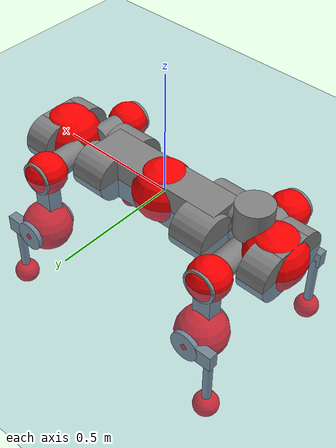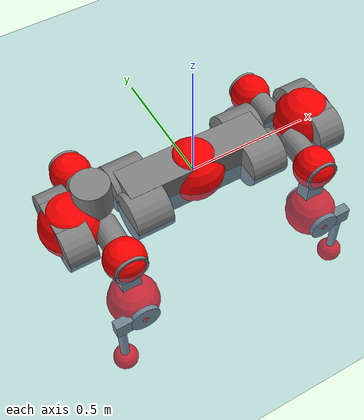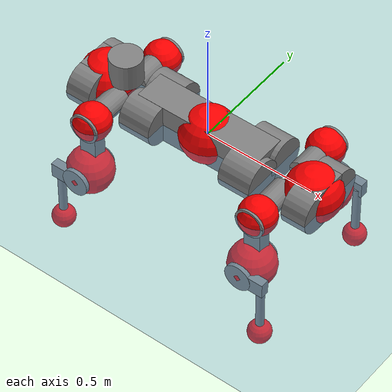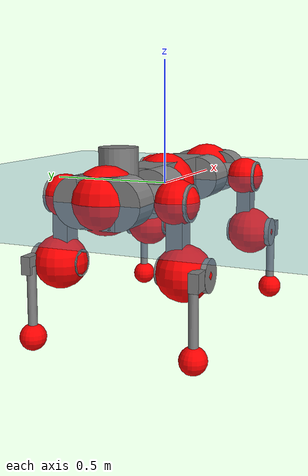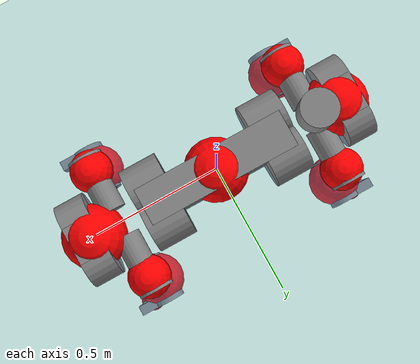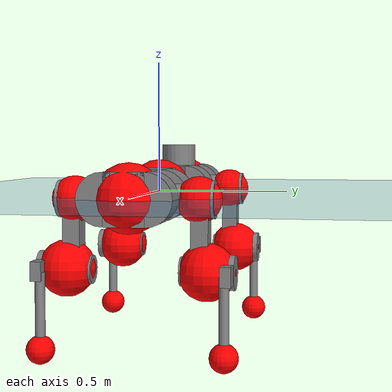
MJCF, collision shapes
<mujoco model="anymal_c">
  <compiler angle="radian" assetdir="assets" balanceinertia="true" inertiafromgeom="false"/>

  <option timestep="0.005" density="1.2" viscosity="2e-05"/>

  <size nkey="1"/>

  <visual>
    <quality shadowsize="8192"/>
    <map shadowclip="0.5"/>
  </visual>

  <default>
    <default class="/">
      <material specular="0" shininess="0.25"/>
      <geom contype="0" conaffinity="0" group="1" solref="-1000 -80"/>
      <site size="0.01 0.005 0.005" group="5"/>
      <general forcelimited="true" forcerange="-80 80" biastype="affine" gainprm="80" biasprm="0 -80 -2"/>
      <default class="anymal_c">
        <joint armature="0.01" damping="0.01" frictionloss="0.1"/>
        <default class="visual">
          <geom type="mesh" group="2"/>
          <default class="visual_zflip"/>
        </default>
        <default class="collision">
          <geom type="cylinder" group="3"/>
          <default class="foot">
            <geom size="0.03 0 0" type="sphere" condim="6" priority="1" friction="0.8 0.02 0.01" solimp="0.015 1 0.03"/>
          </default>
        </default>
      </default>
      <default class="reward_collision_sphere">
        <geom group="5" rgba="1 0 0 1"/>
      </default>
    </default>
  </default>

  <asset>
    <texture type="skybox" colorspace="auto" name="//unnamed_texture_0" builtin="gradient" rgb1="0.95 0.95 0.95" rgb2="0.95 0.95 0.95" width="100" height="600"/>
    <texture type="2d" colorspace="auto" name="texplane" builtin="checker" rgb1="0.345 0.575 0.748" rgb2="0.345 0.575 0.748" markrgb="1 1 1" width="512" height="512"/>
    <texture type="2d" colorspace="linear" name="base" file="base.png"/>
    <texture type="2d" colorspace="linear" name="top_shell" file="top_shell.png"/>
    <texture type="2d" colorspace="linear" name="bottom_shell" file="bottom_shell.png"/>
    <texture type="2d" colorspace="linear" name="remote" file="remote.png"/>
    <texture type="2d" colorspace="linear" name="hatch" file="hatch.png"/>
    <texture type="2d" colorspace="linear" name="handle" file="handle.png"/>
    <texture type="2d" colorspace="linear" name="face" file="face.png"/>
    <texture type="2d" colorspace="linear" name="battery" file="battery.png"/>
    <texture type="2d" colorspace="linear" name="lidar_cage" file="lidar_cage.png"/>
    <texture type="2d" colorspace="linear" name="depth_camera" file="depth_camera.png"/>
    <texture type="2d" colorspace="linear" name="wide_angle_camera" file="wide_angle_camera.png"/>
    <texture type="2d" colorspace="linear" name="lidar" file="lidar.png"/>
    <texture type="2d" colorspace="linear" name="drive" file="drive.png"/>
    <texture type="2d" colorspace="linear" name="hip_l" file="hip_l.png"/>
    <texture type="2d" colorspace="linear" name="shank_l" file="shank_l.png"/>
    <texture type="2d" colorspace="linear" name="foot" file="foot.png"/>
    <texture type="2d" colorspace="linear" name="thigh" file="thigh.png"/>
    <texture type="2d" colorspace="linear" name="shank_r" file="shank_r.png"/>
    <texture type="2d" colorspace="linear" name="hip_r" file="hip_r.png"/>
    <material name="MatPlane" class="/" texture="texplane" texuniform="true" texrepeat="2 2" specular="0.9" shininess="0.5"/>
    <material name="black_plastic" class="/" rgba="0.007 0.007 0.007 1"/>
    <material name="green" class="/" rgba="0.052 0.178 0.033 1"/>
    <material name="red" class="/" rgba="0.178 0.006 0.005 1"/>
    <material name="yellow" class="/" rgba="0.178 0.119 0.006 1"/>
    <material name="lwl" class="/" rgba="0.8 0.8 0.8 1"/>
    <material name="base" class="/" texture="base"/>
    <material name="top_shell" class="/" texture="top_shell"/>
    <material name="bottom_shell" class="/" texture="bottom_shell"/>
    <material name="hip_l" class="/" texture="hip_l"/>
    <material name="thigh" class="/" texture="thigh"/>
    <material name="shank_l" class="/" texture="shank_l"/>
    <material name="foot" class="/" texture="foot"/>
    <material name="hip_r" class="/" texture="hip_r"/>
    <material name="shank" class="/" texture="shank_r"/>
    <material name="hatch" class="/" texture="hatch"/>
    <material name="remote" class="/" texture="remote"/>
    <material name="handle" class="/" texture="handle"/>
    <material name="face" class="/" texture="face"/>
    <material name="depth_camera" class="/" texture="depth_camera"/>
    <material name="wide_angle_camera" class="/" texture="wide_angle_camera"/>
    <material name="battery" class="/" texture="battery"/>
    <material name="lidar_cage" class="/" texture="lidar_cage"/>
    <material name="lidar" class="/" texture="lidar"/>
    <material name="drive" class="/" texture="drive"/>
    <mesh name="base_0" class="/" file="base_0.obj"/>
    <mesh name="base_1" class="/" file="base_1.obj"/>
    <mesh name="base_2" class="/" file="base_2.obj"/>
    <mesh name="base_3" class="/" file="base_3.obj"/>
    <mesh name="base_4" class="/" file="base_4.obj"/>
    <mesh name="base_5" class="/" file="base_5.obj"/>
    <mesh name="top_shell" class="/" file="top_shell.obj"/>
    <mesh name="bottom_shell" class="/" file="bottom_shell.obj"/>
    <mesh name="remote" class="/" file="remote.obj"/>
    <mesh name="handle" class="/" file="handle.obj"/>
    <mesh name="face" class="/" file="face.obj"/>
    <mesh name="wide_angle_camera" class="/" file="wide_angle_camera.obj"/>
    <mesh name="depth_camera" class="/" file="depth_camera.obj"/>
    <mesh name="battery" class="/" file="battery.obj"/>
    <mesh name="lidar_cage" class="/" file="lidar_cage.obj"/>
    <mesh name="lidar" class="/" file="lidar.obj"/>
    <mesh name="drive" class="/" file="drive.obj"/>
    <mesh name="hip_l" class="/" file="hip_l.obj"/>
    <mesh name="thigh" class="/" file="thigh.obj"/>
    <mesh name="shank_l" class="/" file="shank_l.obj"/>
    <mesh name="foot" class="/" file="foot.obj"/>
    <mesh name="hip_r" class="/" file="hip_r.obj"/>
    <mesh name="hatch" class="/" file="hatch.obj"/>
    <mesh name="shank_r" class="/" file="shank_r.obj"/>
  </asset>

  <worldbody>
    <geom name="floor" class="/" size="100 100 0.125" type="plane" group="0" material="MatPlane"/>
    <light name="toplight_shadow" class="/" pos="0 0 5" dir="0.0990148 0.0990148 -0.990148" type="directional" ambient="0.04 0.04 0.04" diffuse="0.55 0.55 0.55" specular="0.12 0.12 0.12"/>
    <light name="toplight_fill" class="/" pos="0 0 5" dir="0.0990148 0.0990148 -0.990148" type="directional" castshadow="false" ambient="0.04 0.04 0.04" diffuse="0.3 0.3 0.3" specular="0.08 0.08 0.08"/>
    <body name="trunk" childclass="anymal_c" pos="0.00197105 0.00195814 0.00101384" quat="1 0.000231007 -1.26168e-05 3.44232e-05">
      <inertial pos="0.00275869 0.00087974 0.0422912" quat="0.493753 0.495414 0.51086 0.499795" mass="20.8318" diaginertia="1.25443 0.873735 0.113641"/>
      <joint name="//unnamed_joint_0" type="free" armature="0" damping="0" frictionloss="0"/>
      <geom name="//unnamed_geom_1" class="visual" material="green" mesh="base_0"/>
      <geom name="//unnamed_geom_2" class="visual" material="yellow" mesh="base_1"/>
      <geom name="//unnamed_geom_3" class="visual" material="red" mesh="base_2"/>
      <geom name="//unnamed_geom_4" class="visual" material="black_plastic" mesh="base_3"/>
      <geom name="//unnamed_geom_5" class="visual" material="lwl" mesh="base_4"/>
      <geom name="//unnamed_geom_6" class="visual" material="base" mesh="base_5"/>
      <geom name="trunk_1" class="collision" size="0.296629 0.0716 0.0920572" type="box"/>
      <geom name="trunk_2" class="collision" size="0.0920572 0.0741572" pos="0.246218 0.0740072 0" quat="0.707107 0 0.707107 0"/>
      <geom name="trunk_3" class="collision" size="0.0920572 0.0741572" pos="-0.246218 0.0740072 0" quat="0.707107 0 0.707107 0"/>
      <geom name="trunk_4" class="collision" size="0.0920572 0.0741572" pos="0.246218 -0.0740072 0" quat="0.707107 0 0.707107 0"/>
      <geom name="trunk_5" class="collision" size="0.0920572 0.0741572" pos="-0.246218 -0.0740072 0" quat="0.707107 0 0.707107 0"/>
      <geom name="//unnamed_geom_12" class="visual" material="top_shell" mesh="top_shell"/>
      <geom name="//unnamed_geom_13" class="visual" material="bottom_shell" mesh="bottom_shell"/>
      <geom name="//unnamed_geom_14" class="visual" material="remote" mesh="remote"/>
      <geom name="//unnamed_geom_15" class="visual" material="handle" mesh="handle"/>
      <geom name="//unnamed_geom_16" class="visual" pos="0.46923 0 0" quat="1 0 0 0" material="face" mesh="face"/>
      <geom name="trunk_6" class="collision" size="0.0562572 0.0716 0.0920572" pos="0.531492 0 0" type="box"/>
      <geom name="//unnamed_geom_18" class="collision" size="0.0920572 0.0562572" pos="0.531492 0.0740072 0" quat="0.707107 0 0.707107 0"/>
      <geom name="//unnamed_geom_19" class="collision" size="0.0920572 0.0562572" pos="0.531492 -0.0740072 0" quat="0.707107 0 0.707107 0"/>
      <geom name="//unnamed_geom_20" class="visual" pos="0.522595 0 -0.0237544" quat="0.965926 0 0.258819 0" material="depth_camera" mesh="depth_camera"/>
      <geom name="//unnamed_geom_21" class="visual" pos="0.580736 0 0.013163" material="wide_angle_camera" mesh="wide_angle_camera"/>
      <geom name="//unnamed_geom_22" class="visual_zflip" pos="-0.46923 0 0" quat="0 0 0 1" material="face" mesh="face"/>
      <geom name="trunk_7" class="collision" size="0.0562572 0.0716 0.0920572" pos="-0.531492 0 0" quat="0 0 0 1" type="box"/>
      <geom name="//unnamed_geom_24" class="collision" size="0.0920572 0.0562572" pos="-0.531492 -0.0740072 0" quat="0 -0.707107 0 0.707107"/>
      <geom name="//unnamed_geom_25" class="collision" size="0.0920572 0.0562572" pos="-0.531492 0.0740072 0" quat="0 -0.707107 0 0.707107"/>
      <geom name="//unnamed_geom_26" class="visual" pos="-0.522595 0 -0.0237544" quat="0 -0.258819 0 0.965926" material="depth_camera" mesh="depth_camera"/>
      <geom name="//unnamed_geom_27" class="visual_zflip" pos="-0.580736 0 0.013163" quat="0 0 0 1" material="wide_angle_camera" mesh="wide_angle_camera"/>
      <geom name="//unnamed_geom_28" class="visual" material="battery" mesh="battery"/>
      <geom name="//unnamed_geom_29" class="visual" pos="0 0.079845 0.0274643" quat="0.683013 -0.183013 0.183013 0.683013" material="depth_camera" mesh="depth_camera"/>
      <geom name="//unnamed_geom_30" class="visual" pos="0 -0.079845 0.0274643" quat="0.683013 0.183013 0.183013 -0.683013" material="depth_camera" mesh="depth_camera"/>
      <geom name="//unnamed_geom_31" class="visual" pos="-0.412062 0 0.0646278" quat="1 0 0 0" material="lidar_cage" mesh="lidar_cage"/>
      <geom name="trunk_8" class="collision" size="0.0716 0.0613715" pos="-0.412062 0 0.117385"/>
      <geom name="//unnamed_geom_33" class="visual" pos="-0.412062 -2.93843e-05 0.125035" quat="0.707107 0 0 -0.707107" material="lidar" mesh="lidar"/>
      <geom name="//unnamed_geom_34" class="visual" pos="0.339498 0.10989 3.06974e-09" quat="0.258819 0.965926 0 0" material="drive" mesh="drive"/>
      <geom name="//unnamed_geom_35" class="visual" pos="0.339498 -0.10989 -3.06974e-09" quat="0.258819 -0.965926 0 0" material="drive" mesh="drive"/>
      <geom name="//unnamed_geom_36" class="visual" pos="-0.339498 0.10989 -3.06974e-09" quat="0 0 0.965926 -0.258819" material="drive" mesh="drive"/>
      <geom name="//unnamed_geom_37" class="visual" pos="-0.339498 -0.10989 3.06974e-09" quat="0 0 -0.965926 -0.258819" material="drive" mesh="drive"/>
      <geom name="//unnamed_geom_38" class="visual" pos="0.131316 0 0.0641882" quat="1 0 0 0" material="hatch" mesh="hatch"/>
      <geom name="//unnamed_geom_39" class="reward_collision_sphere" size="0.122743"/>
      <geom name="//unnamed_geom_40" class="reward_collision_sphere" size="0.122743" pos="0.509417 0 0"/>
      <geom name="//unnamed_geom_41" class="reward_collision_sphere" size="0.122743" pos="-0.509417 0 0"/>
      <site name="imu" pos="0.285875 0.0126023 0.0346483" size="0.0102286"/>
      <camera name="track" pos="0 -2.11449 0" quat="0.707107 0.707107 0 0" mode="trackcom"/>
      <camera name="ego_camera" pos="0.509417 0 -0.0351716" quat="-0.5 -0.5 0.5 0.5"/>
      <body name="LF_HIP" pos="0.338931 0.109517 -0.00333318" quat="0.258948 0.965891 3.16365e-05 -0.00108233">
        <inertial pos="0.0626443 -0.0178508 -0.00764315" quat="-0.129607 0.710034 -0.133274 0.679185" mass="2.9921" diaginertia="0.0109651 0.00632034 0.00176203"/>
        <joint name="LF_HAA" pos="0 0 0" axis="0.999997 0.000874439 0.00219236" range="-0.698566 0.485334" armature="0.00965637" damping="0.00996477" frictionloss="0.115173"/>
        <geom name="//unnamed_geom_42" class="visual" pos="0 0.000180579 -2.96599e-05" quat="0.258819 -0.965926 0 0" material="hip_l" mesh="hip_l"/>
        <geom name="//unnamed_geom_43" class="visual" pos="0.0678091 -0.0811172 -0.0455168" quat="0.183013 -0.683013 0.683013 0.183013" material="drive" mesh="drive"/>
        <geom name="//unnamed_geom_44" class="collision" size="0.0511429 0.0716" pos="0.0678091 -0.0126444 -0.0060715" quat="-0.353553 -0.612372 0.612372 -0.353553"/>
        <body name="LF_THIGH" pos="0.0652511 -0.0777412 -0.0390389" quat="0.182567 -0.682943 0.682934 0.184009">
          <inertial pos="0.0357121 0.000288776 -0.216873" quat="0.993706 -0.00811326 -0.0845508 0.073034" mass="3.1891" diaginertia="0.0548878 0.0387529 0.00216532"/>
          <joint name="LF_HFE" pos="0 0 0" axis="0.999887 -6.81694e-05 0.0150071" range="-3.10477 3.13785" armature="0.0115657" damping="0" frictionloss="0.0881455"/>
          <geom name="//unnamed_geom_45" class="visual" pos="0.00148809 2.34489e-06 0" quat="0.707107 0 0 -0.707107" material="thigh" mesh="thigh"/>
          <geom name="//unnamed_geom_46" class="collision" size="0.0664858 0.0409143" pos="0.0452815 0 0" quat="0.5 0.5 -0.5 -0.5"/>
          <geom name="//unnamed_geom_47" class="collision" size="0.0383572 0.0306857 0.144544" pos="0.0339612 0 -0.124256" quat="0.707107 0 0 -0.707107" type="box"/>
          <geom name="//unnamed_geom_48" class="visual" pos="0.113543 0 -0.250598" quat="1 0 0 0" material="drive" mesh="drive"/>
          <geom name="//unnamed_geom_49" class="collision" size="0.0511429 0.0716" pos="0.0343008 0 -0.250598" quat="0.707107 0 0.707107 0"/>
          <geom name="//unnamed_geom_50" class="reward_collision_sphere" size="0.0818286" pos="0.028301 0 0"/>
          <body name="LF_SHANK" pos="0.112884 -0.000944881 -0.251319" quat="0.999999 0.000602899 -0.000485477 -0.00106112">
            <inertial pos="0.00869045 -0.0650026 -0.0710968" quat="0.993662 -0.108976 0.00159649 -0.0275215" mass="0.674809" diaginertia="0.0189079 0.0127132 0.000591347"/>
            <joint name="LF_KFE" pos="0 0 0" axis="0.999974 -0.00315277 0.00641121" range="-3.13155 3.14922" armature="0.0106035" damping="0" frictionloss="0.097038"/>
            <geom name="//unnamed_geom_51" class="visual" pos="0.000485235 0.0025873 0" quat="0.707107 0 0 -0.707107" material="shank_l" mesh="shank_l"/>
            <geom name="LF_kfe_act" class="collision" size="0.0613715 0.0204572" pos="0.0226408 0 0" quat="0.5 0.5 -0.5 -0.5"/>
            <geom name="//unnamed_geom_53" class="collision" size="0.0588133 0.0345215 0.0194343" pos="0.0226408 -0.0607905 0" quat="0.5 0.5 -0.5 -0.5" type="box"/>
            <geom name="//unnamed_geom_54" class="visual" pos="0.014773 -0.0921509 -0.297174" quat="0.382683 0 0 -0.92388" material="foot" mesh="foot"/>
            <geom name="LF_calf" class="collision" size="0.0179 0.144481" pos="0.0147731 -0.0929847 -0.148587" quat="0.707107 0 0 -0.707107"/>
            <geom name="LF_foot" class="foot" size="0.0338817" pos="0.0147731 -0.0929847 -0.27739" quat="0.707107 0 0 -0.707107"/>
            <geom name="//unnamed_geom_57" class="reward_collision_sphere" size="0.102286" pos="-0.0566019 0 0"/>
            <geom name="//unnamed_geom_58" class="reward_collision_sphere" size="0.0511429" pos="0.0147731 -0.0929847 -0.27739"/>
            <site name="LF_foot" class="foot" pos="0.0147731 -0.0929847 -0.27739" quat="0.707107 0 0 -0.707107" size="0.0102286"/>
          </body>
        </body>
      </body>
      <body name="RF_HIP" pos="0.338748 -0.109501 -0.00161183" quat="0.258802 -0.96593 -7.12067e-05 -0.00039922">
        <inertial pos="0.0653092 0.0178361 -0.00901405" quat="0.121286 0.679386 0.128665 0.712159" mass="2.99985" diaginertia="0.0112059 0.00637546 0.00175693"/>
        <joint name="RF_HAA" pos="0 0 0" axis="0.999934 -0.0101951 0.00523005" range="-0.524182 0.704945" armature="0.0103147" damping="0.00471764" frictionloss="0.0902772"/>
        <geom name="//unnamed_geom_59" class="visual" pos="0 -0.000180578 -2.96599e-05" quat="0.258819 0.965926 0 0" material="hip_r" mesh="hip_r"/>
        <geom name="//unnamed_geom_60" class="visual" pos="0.0678091 0.0811172 -0.0455168" quat="0.183013 0.683013 0.683013 -0.183013" material="drive" mesh="drive"/>
        <geom name="//unnamed_geom_61" class="collision" size="0.0511429 0.0716" pos="0.0678091 0.0126444 -0.0060715" quat="-0.353553 0.612372 0.612372 0.353553"/>
        <body name="RF_THIGH" pos="0.0683175 0.074754 -0.0350088" quat="0.183467 0.682749 0.683267 -0.182591">
          <inertial pos="0.0323664 0.000295795 -0.214964" quat="0.992688 -0.00549369 -0.0813901 0.0889758" mass="3.34857" diaginertia="0.056923 0.0399371 0.002233"/>
          <joint name="RF_HFE" pos="0 0 0" axis="0.999924 0.0114159 -0.00469524" stiffness="0.0126505" range="-3.12469 3.19138" armature="0.00970841" damping="0" frictionloss="0.101488"/>
          <geom name="//unnamed_geom_62" class="visual" pos="0.00148809 2.34489e-06 0" quat="0.707107 0 0 -0.707107" material="thigh" mesh="thigh"/>
          <geom name="//unnamed_geom_63" class="collision" size="0.0664858 0.0409143" pos="0.0452815 0 0" quat="0.5 0.5 0.5 0.5"/>
          <geom name="//unnamed_geom_64" class="collision" size="0.0383572 0.0306857 0.144544" pos="0.0339612 0 -0.124256" quat="0.707107 0 0 0.707107" type="box"/>
          <geom name="//unnamed_geom_65" class="visual" pos="0.113543 0 -0.250598" quat="1 0 0 0" material="drive" mesh="drive"/>
          <geom name="//unnamed_geom_66" class="collision" size="0.0511429 0.0716" pos="0.0343008 0 -0.250598" quat="0.707107 0 0.707107 0"/>
          <geom name="//unnamed_geom_67" class="reward_collision_sphere" size="0.0818286" pos="0.028301 0 0"/>
          <body name="RF_SHANK" pos="0.11466 0.00123248 -0.247651" quat="1 0.000427514 0.000226368 -8.37892e-05">
            <inertial pos="0.0064813 0.0619428 -0.0684579" quat="0.992911 0.116175 -0.00243165 0.0249987" mass="0.615963" diaginertia="0.0196607 0.0126357 0.000600065"/>
            <joint name="RF_KFE" pos="0 0 0" axis="0.999913 0.012302 -0.00481606" stiffness="0.00570933" range="-3.16884 3.1568" armature="0.00985504" damping="0.0166435" frictionloss="0.112877"/>
            <geom name="//unnamed_geom_68" class="visual" pos="0.000485232 -0.00258729 0" quat="0.707107 0 0 0.707107" material="shank" mesh="shank_r"/>
            <geom name="RF_kfe_act" class="collision" size="0.0613715 0.0204572" pos="0.0226408 0 0" quat="0.5 0.5 0.5 0.5"/>
            <geom name="//unnamed_geom_70" class="collision" size="0.0588133 0.0345215 0.0194343" pos="0.0226408 0.0607905 0" quat="0.5 0.5 0.5 0.5" type="box"/>
            <geom name="//unnamed_geom_71" class="visual" pos="0.0147732 0.0921509 -0.297174" quat="0.382683 0 0 0.92388" material="foot" mesh="foot"/>
            <geom name="RF_calf" class="collision" size="0.0179 0.144481" pos="0.0147731 0.0929847 -0.148587" quat="0.707107 0 0 0.707107"/>
            <geom name="RF_foot" class="foot" size="0.0295858" pos="0.0147731 0.0929847 -0.27739" quat="0.707107 0 0 0.707107"/>
            <geom name="//unnamed_geom_74" class="reward_collision_sphere" size="0.102286" pos="-0.0566019 0 0"/>
            <geom name="//unnamed_geom_75" class="reward_collision_sphere" size="0.0511429" pos="0.0147731 0.0929847 -0.27739"/>
            <site name="RF_foot" class="foot" pos="0.0147731 0.0929847 -0.27739" quat="0.707107 0 0 0.707107" size="0.0102286"/>
          </body>
        </body>
      </body>
      <body name="LH_HIP" pos="-0.339112 0.107938 -0.00115759" quat="4.98403e-05 0.000110491 0.966004 -0.258526">
        <inertial pos="0.0656767 0.0156341 -0.00686756" quat="0.140869 0.68505 0.128293 0.703138" mass="2.86308" diaginertia="0.0107182 0.00644391 0.00167014"/>
        <joint name="LH_HAA" pos="0 0 0" axis="0.999903 0.0106414 0.00895493" range="-0.43754 0.763589" armature="0.0100925" damping="0.0103372" frictionloss="0.0942734"/>
        <geom name="//unnamed_geom_76" class="visual" pos="0 -0.000180578 -2.96599e-05" quat="-0.258819 -0.965926 0 0" material="hip_r" mesh="hip_r"/>
        <geom name="//unnamed_geom_77" class="visual" pos="0.0678091 0.0811172 -0.0455168" quat="0.183013 0.683013 0.683013 -0.183013" material="drive" mesh="drive"/>
        <geom name="//unnamed_geom_78" class="collision" size="0.0511429 0.0716" pos="0.0678091 0.0126444 -0.0060715" quat="-0.353553 0.612372 0.612372 0.353553"/>
        <body name="LH_THIGH" pos="0.069687 0.0791874 -0.0354299" quat="0.183042 0.683432 0.682889 -0.181877">
          <inertial pos="0.0350532 0.00118426 -0.216881" quat="0.99242 -0.00401237 -0.0917071 0.0817071" mass="3.40241" diaginertia="0.0561129 0.0403568 0.00225504"/>
          <joint name="LH_HFE" pos="0 0 0" axis="0.999948 0.00714175 0.00724612" range="-3.08589 3.19601" armature="0.0110046" damping="0.0166224" frictionloss="0.114153"/>
          <geom name="//unnamed_geom_79" class="visual" pos="0.00148809 2.34489e-06 0" quat="0.707107 0 0 -0.707107" material="thigh" mesh="thigh"/>
          <geom name="//unnamed_geom_80" class="collision" size="0.0664858 0.0409143" pos="0.0452815 0 0" quat="0.5 0.5 -0.5 -0.5"/>
          <geom name="//unnamed_geom_81" class="collision" size="0.0383572 0.0306857 0.144544" pos="0.0339612 0 -0.124256" quat="0.707107 0 0 -0.707107" type="box"/>
          <geom name="//unnamed_geom_82" class="visual" pos="0.113543 0 -0.250598" quat="1 0 0 0" material="drive" mesh="drive"/>
          <geom name="//unnamed_geom_83" class="collision" size="0.0511429 0.0716" pos="0.0343008 0 -0.250598" quat="0.707107 0 0.707107 0"/>
          <geom name="//unnamed_geom_84" class="reward_collision_sphere" size="0.0818286" pos="0.028301 0 0"/>
          <body name="LH_SHANK" pos="0.110825 0.00202553 -0.251686" quat="1 0.000336503 -0.000142073 -0.000208838">
            <inertial pos="0.00519219 0.0648028 -0.070688" quat="0.993662 0.109122 -0.0126639 0.0238422" mass="0.619556" diaginertia="0.0190846 0.011917 0.00058961"/>
            <joint name="LH_KFE" pos="0 0 0" axis="0.999978 -0.00568889 -0.00354303" range="-3.14103 3.08336" armature="0.0104579" damping="0.0104635" frictionloss="0.0890534"/>
            <geom name="//unnamed_geom_85" class="visual" pos="0.000485232 -0.00258729 0" quat="-0.707107 0 0 -0.707107" material="shank" mesh="shank_r"/>
            <geom name="LH_kfe_act" class="collision" size="0.0613715 0.0204572" pos="0.0226408 0 0" quat="0.5 0.5 -0.5 -0.5"/>
            <geom name="//unnamed_geom_87" class="collision" size="0.0588133 0.0345215 0.0194343" pos="0.0226408 0.0607905 0" quat="0.5 0.5 -0.5 -0.5" type="box"/>
            <geom name="//unnamed_geom_88" class="visual" pos="0.0147732 0.0921509 -0.297174" quat="-0.382683 0 0 -0.92388" material="foot" mesh="foot"/>
            <geom name="LH_calf" class="collision" size="0.0179 0.144481" pos="0.0147731 0.0929847 -0.148587" quat="0.707107 0 0 -0.707107"/>
            <geom name="LH_foot" class="foot" size="0.0283232" pos="0.0147731 0.0929847 -0.27739" quat="0.707107 0 0 -0.707107"/>
            <geom name="//unnamed_geom_91" class="reward_collision_sphere" size="0.102286" pos="-0.0566019 0 0"/>
            <geom name="//unnamed_geom_92" class="reward_collision_sphere" size="0.0511429" pos="0.0147731 0.0929847 -0.27739"/>
            <site name="LH_foot" class="foot" pos="0.0147731 0.0929847 -0.27739" quat="0.707107 0 0 -0.707107" size="0.0102286"/>
          </body>
        </body>
      </body>
      <body name="RH_HIP" pos="-0.34068 -0.108308 0.000783941" quat="0.000442964 0.000536808 -0.966019 -0.25847">
        <inertial pos="0.0668845 -0.0136186 -0.00721119" quat="-0.12486 0.713644 -0.132113 0.676512" mass="2.98462" diaginertia="0.0113048 0.00674951 0.00179679"/>
        <joint name="RH_HAA" pos="0 0 0" axis="0.999985 0.00356938 -0.0042682" range="-0.728304 0.523843" armature="0.00936976" damping="0.0238481" frictionloss="0.101663"/>
        <geom name="//unnamed_geom_93" class="visual" pos="0 0.000180579 -2.96599e-05" quat="-0.258819 0.965926 0 0" material="hip_l" mesh="hip_l"/>
        <geom name="//unnamed_geom_94" class="visual" pos="0.0678091 -0.0811172 -0.0455168" quat="-0.183013 0.683013 -0.683013 -0.183013" material="drive" mesh="drive"/>
        <geom name="//unnamed_geom_95" class="collision" size="0.0511429 0.0716" pos="0.0678091 -0.0126444 -0.0060715" quat="0.353553 0.612372 -0.612372 0.353553"/>
        <body name="RH_THIGH" pos="0.0668808 -0.0777894 -0.035206" quat="-0.183219 0.682649 -0.683504 -0.182331">
          <inertial pos="0.0359737 0.00112391 -0.214512" quat="0.993369 -0.00311853 -0.0806506 0.0818759" mass="3.27716" diaginertia="0.0569474 0.040821 0.00222256"/>
          <joint name="RH_HFE" pos="0 0 0" axis="0.999999 -0.000923251 -0.000511267" range="-3.13706 3.18197" armature="0.0113028" damping="0.000478753" frictionloss="0.0891818"/>
          <geom name="//unnamed_geom_96" class="visual" pos="0.00148809 2.34489e-06 0" quat="0.707107 0 0 -0.707107" material="thigh" mesh="thigh"/>
          <geom name="//unnamed_geom_97" class="collision" size="0.0664858 0.0409143" pos="0.0452815 0 0" quat="0.5 0.5 0.5 0.5"/>
          <geom name="//unnamed_geom_98" class="collision" size="0.0383572 0.0306857 0.144544" pos="0.0339612 0 -0.124256" quat="0.707107 0 0 0.707107" type="box"/>
          <geom name="//unnamed_geom_99" class="visual" pos="0.113543 0 -0.250598" quat="1 0 0 0" material="drive" mesh="drive"/>
          <geom name="//unnamed_geom_100" class="collision" size="0.0511429 0.0716" pos="0.0343008 0 -0.250598" quat="0.707107 0 0.707107 0"/>
          <geom name="//unnamed_geom_101" class="reward_collision_sphere" size="0.0818286" pos="0.028301 0 0"/>
          <body name="RH_SHANK" pos="0.11251 0.00127477 -0.249741" quat="1 8.22668e-05 -0.000115273 -0.000126246">
            <inertial pos="0.00419557 -0.0656897 -0.0694968" quat="0.993114 -0.114481 -0.00538898 -0.0242761" mass="0.656105" diaginertia="0.0184593 0.012697 0.000596647"/>
            <joint name="RH_KFE" pos="0 0 0" axis="0.999999 -0.000689608 0.000814624" range="-3.14931 3.16631" armature="0.0100645" damping="0.0108645" frictionloss="0.108961"/>
            <geom name="//unnamed_geom_102" class="visual" pos="0.000485235 0.0025873 0" quat="0.707107 0 0 -0.707107" material="shank_l" mesh="shank_l"/>
            <geom name="RH_kfe_act" class="collision" size="0.0613715 0.0204572" pos="0.0226408 0 0" quat="0.5 0.5 0.5 0.5"/>
            <geom name="//unnamed_geom_104" class="collision" size="0.0588133 0.0345215 0.0194343" pos="0.0226408 -0.0607905 0" quat="0.5 0.5 0.5 0.5" type="box"/>
            <geom name="//unnamed_geom_105" class="visual" pos="0.014773 -0.0921509 -0.297174" quat="0.382683 0 0 -0.92388" material="foot" mesh="foot"/>
            <geom name="RH_calf" class="collision" size="0.0179 0.144481" pos="0.0147731 -0.0929847 -0.148587" quat="0.707107 0 0 0.707107"/>
            <geom name="RH_foot" class="foot" size="0.0315013" pos="0.0147731 -0.0929847 -0.27739" quat="0.707107 0 0 0.707107"/>
            <geom name="//unnamed_geom_108" class="reward_collision_sphere" size="0.102286" pos="-0.0566019 0 0"/>
            <geom name="//unnamed_geom_109" class="reward_collision_sphere" size="0.0511429" pos="0.0147731 -0.0929847 -0.27739"/>
            <site name="RH_foot" class="foot" pos="0.0147731 -0.0929847 -0.27739" quat="0.707107 0 0 0.707107" size="0.0102286"/>
          </body>
        </body>
      </body>
    </body>
  </worldbody>

  <contact>
    <pair class="/" geom1="floor" geom2="LF_foot" name="//unnamed_contact_0"/>
    <pair class="/" geom1="floor" geom2="RF_foot" name="//unnamed_contact_1"/>
    <pair class="/" geom1="floor" geom2="LH_foot" name="//unnamed_contact_2"/>
    <pair class="/" geom1="floor" geom2="RH_foot" name="//unnamed_contact_3"/>
  </contact>

  <actuator>
    <general name="LF_HAA" class="/" joint="LF_HAA" forcerange="-81.5911 81.5911" gainprm="82.5601" biasprm="0 -82.5601 -2.17893"/>
    <general name="LF_HFE" class="/" joint="LF_HFE" forcerange="-74.6988 74.6988" gainprm="82.5601" biasprm="0 -82.5601 -2.17893"/>
    <general name="LF_KFE" class="/" joint="LF_KFE" forcerange="-89.3784 89.3784" gainprm="82.5601" biasprm="0 -82.5601 -2.17893"/>
    <general name="RF_HAA" class="/" joint="RF_HAA" forcerange="-84.0798 84.0798" gainprm="82.5601" biasprm="0 -82.5601 -2.17893"/>
    <general name="RF_HFE" class="/" joint="RF_HFE" forcerange="-81.9014 81.9014" gainprm="82.5601" biasprm="0 -82.5601 -2.17893"/>
    <general name="RF_KFE" class="/" joint="RF_KFE" forcerange="-90.764 90.764" gainprm="82.5601" biasprm="0 -82.5601 -2.17893"/>
    <general name="LH_HAA" class="/" joint="LH_HAA" forcerange="-82.0532 82.0532" gainprm="82.5601" biasprm="0 -82.5601 -2.17893"/>
    <general name="LH_HFE" class="/" joint="LH_HFE" forcerange="-91.1222 91.1222" gainprm="82.5601" biasprm="0 -82.5601 -2.17893"/>
    <general name="LH_KFE" class="/" joint="LH_KFE" forcerange="-74.7134 74.7134" gainprm="82.5601" biasprm="0 -82.5601 -2.17893"/>
    <general name="RH_HAA" class="/" joint="RH_HAA" forcerange="-83.998 83.998" gainprm="82.5601" biasprm="0 -82.5601 -2.17893"/>
    <general name="RH_HFE" class="/" joint="RH_HFE" forcerange="-87.1188 87.1188" gainprm="82.5601" biasprm="0 -82.5601 -2.17893"/>
    <general name="RH_KFE" class="/" joint="RH_KFE" forcerange="-79.7038 79.7038" gainprm="82.5601" biasprm="0 -82.5601 -2.17893"/>
  </actuator>

  <sensor>
    <gyro site="imu" name="imu_angular_velocity"/>
    <velocimeter site="imu" name="imu_linear_velocity"/>
    <framelinvel objtype="site" objname="LF_foot" name="LF_foot_global_linear_velocity"/>
    <framelinvel objtype="site" objname="RF_foot" name="RF_foot_global_linear_velocity"/>
    <framelinvel objtype="site" objname="LH_foot" name="LH_foot_global_linear_velocity"/>
    <framelinvel objtype="site" objname="RH_foot" name="RH_foot_global_linear_velocity"/>
  </sensor>

  <keyframe>
    <key name="home" qpos="0 0 0.55 1 0 0 0 0 0.4 -0.8 0 -0.4 0.8 0 -0.4 0.8 0 0.4 -0.8"/>
  </keyframe>
</mujoco>
